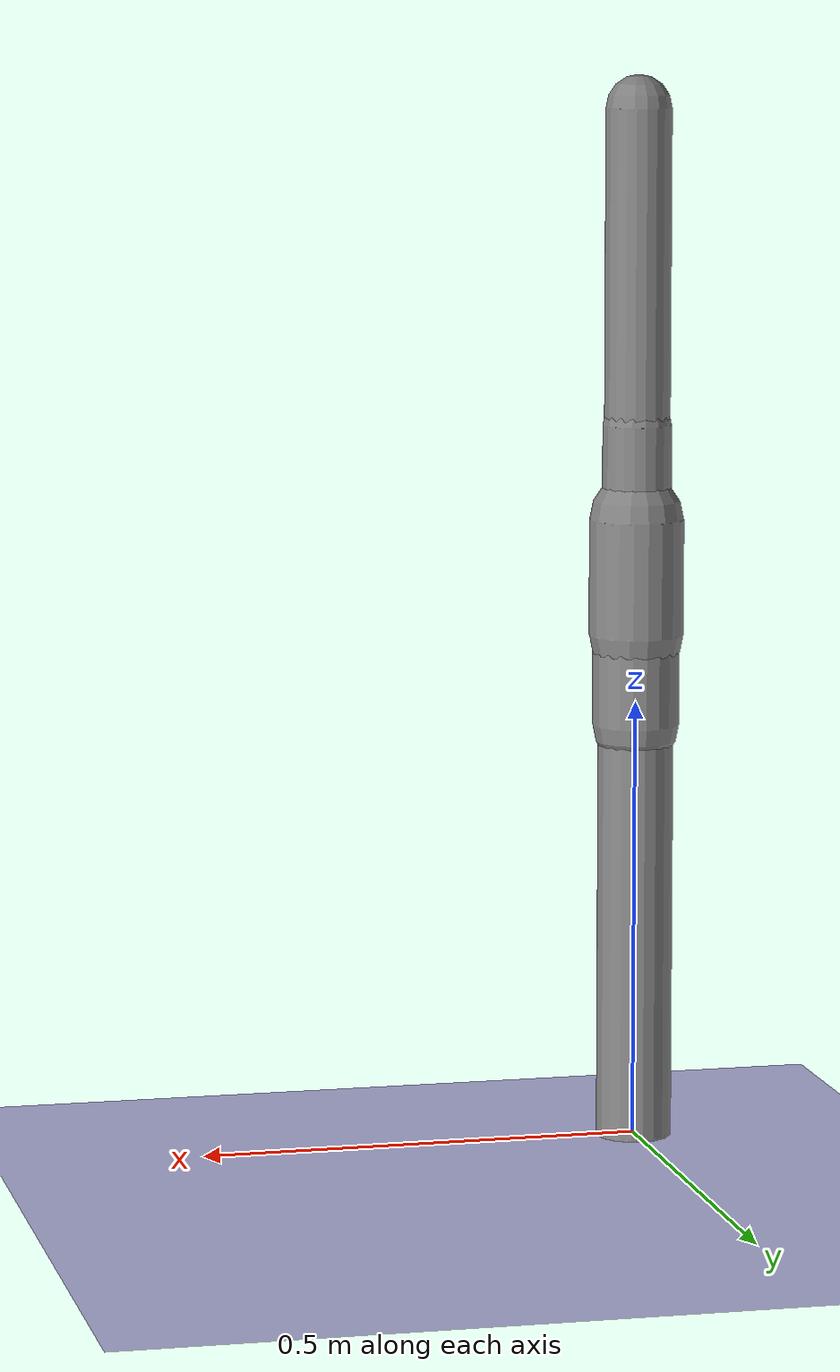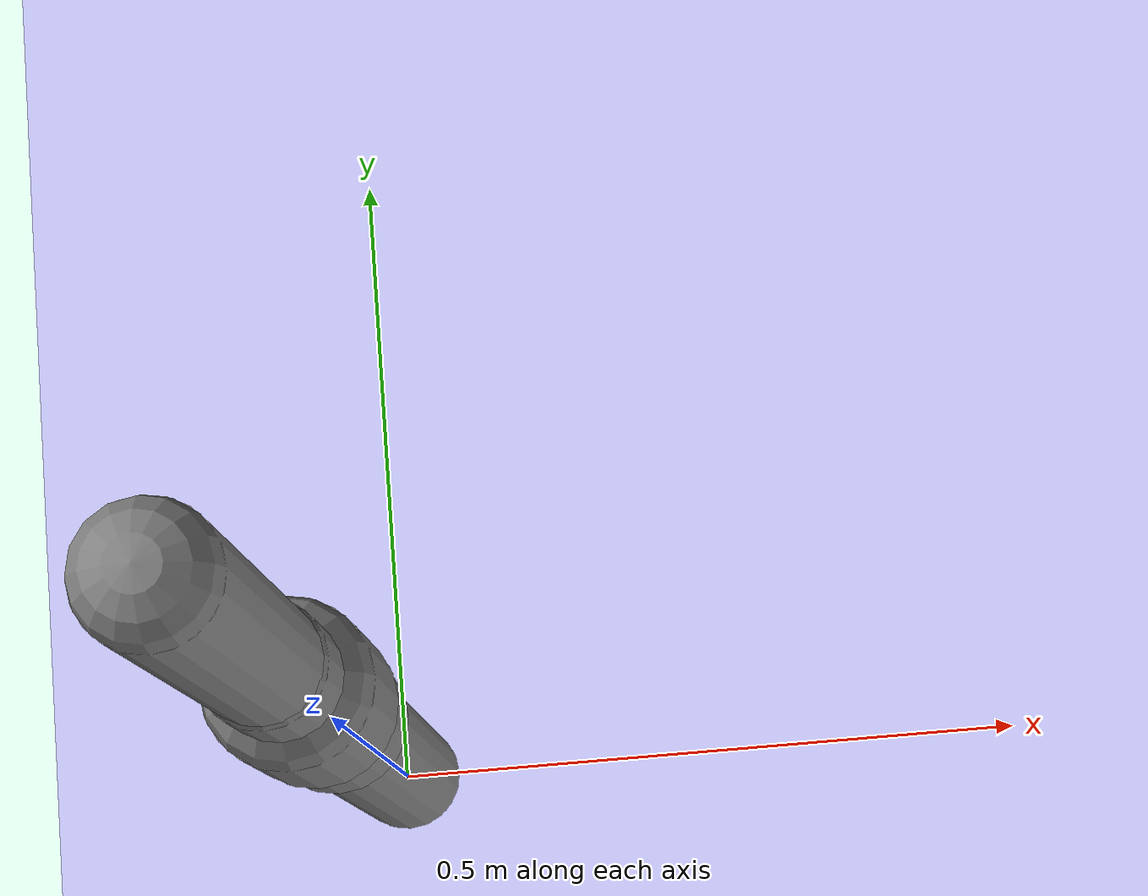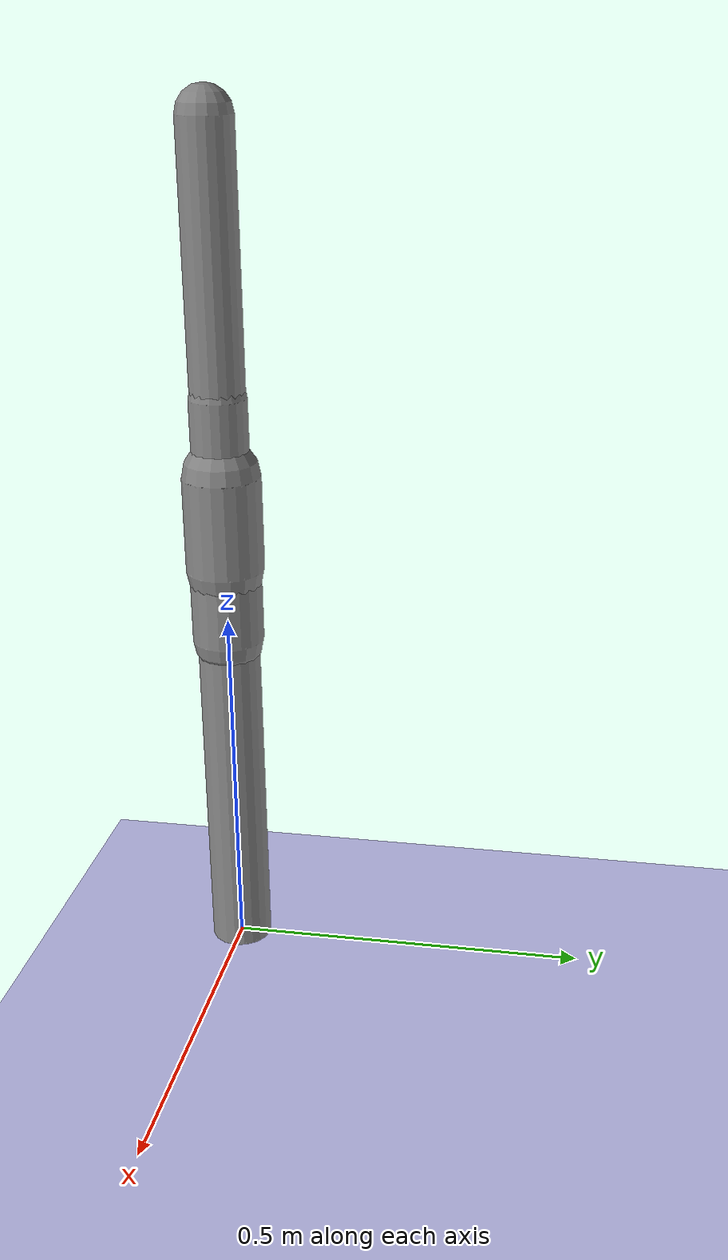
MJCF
<?xml version='1.0' encoding='UTF-8'?>
<mujoco model="robot_model">
  <worldbody>
    <light name="light" pos="0 -3 10" dir="0 0.5 -1" diffuse=".8 .8 .8" specular="0.1 0.1 0.1"/>
    <geom name="floor" type="plane" size="10.0 10.0 0.1" pos="0 0 0" rgba="0.8 0.8 1 1" contype="2" conaffinity="1"/>
    <body name="limb0" pos="0 0 0">
      <geom type="capsule" fromto="0 0 0 0 0 0.5373039636177552" size="0.0426302141580299" density="944.1123055177636" contype="1" conaffinity="2"/>
      <site type="sphere" size="0.01" name="limb0_site0" pos="0 0 0.309974763287745"/>
      <site type="sphere" size="0.01" name="limb0_site1" pos="0 0 0.5059824499294462"/>
      <freejoint name="limb0_root"/>
      <body name="limb1" pos="0 0 0.309974763287745">
        <geom type="capsule" fromto="0 0 0 0 0 0.2639757366326131" size="0.03303782304059255" density="616.6153958948047" contype="1" conaffinity="2"/>
        <site type="sphere" size="0.01" name="limb1_site0" pos="0 0 0.16469519644951955"/>
        <site type="sphere" size="0.01" name="limb1_site1" pos="0 0 0.10105994540977413"/>
        <body name="limb2" pos="0 0 0.16469519644951955">
          <geom type="capsule" fromto="0 0 0 0 0 0.23785756650714102" size="0.049138871714439904" density="645.8772761445443" contype="1" conaffinity="2"/>
          <site type="sphere" size="0.01" name="limb2_site0" pos="0 0 0.10229628708624505"/>
          <body name="limb3" pos="0 0 0.10229628708624505">
            <geom type="capsule" fromto="0 0 0 0 0 0.1320734913801986" size="0.05340957392047939" density="1133.4821049602715" contype="1" conaffinity="2"/>
            <joint name="joint_limb2_limb3_0" type="hinge" axis="0 1 0" range="-69.44632972357735 69.44632972357735" damping="5.0"/>
          </body>
          <joint name="joint_limb1_limb2_0" type="hinge" axis="0 1 0" range="-79.19027832141104 79.19027832141104" damping="5.0"/>
        </body>
        <body name="limb4" pos="0 0 0.10105994540977413">
          <geom type="capsule" fromto="0 0 0 0 0 0.40476216303504414" size="0.0389533326962269" density="911.3399786459739" contype="1" conaffinity="2"/>
          <site type="sphere" size="0.01" name="limb4_site0" pos="0 0 0.40456032929600577"/>
          <body name="limb5" pos="0 0 0.40456032929600577">
            <geom type="capsule" fromto="0 0 0 0 0 0.3549518955056481" size="0.037166377547990764" density="775.7969601490553" contype="1" conaffinity="2"/>
            <joint name="joint_limb4_limb5_0" type="hinge" axis="0 1 0" range="-97.60316524447805 97.60316524447805" damping="5.0"/>
          </body>
          <joint name="joint_limb1_limb4_0" type="hinge" axis="0 1 0" range="-81.36051586401729 81.36051586401729" damping="5.0"/>
        </body>
        <joint name="joint_limb0_limb1_0" type="hinge" axis="0 1 0" range="-106.52351145579496 106.52351145579496" damping="5.0"/>
      </body>
      <body name="limb6" pos="0 0 0.5059824499294462">
        <geom type="capsule" fromto="0 0 0 0 0 0.12459660118477343" size="0.048030699364997174" density="1200.0" contype="1" conaffinity="2"/>
        <joint name="joint_limb0_limb6_0" type="hinge" axis="0 1 0" range="-46.186401585393725 46.186401585393725" damping="5.0"/>
      </body>
    </body>
  </worldbody>
  <actuator>
    <position name="position_actuator_joint_limb0_limb1_0" joint="joint_limb0_limb1_0" gear="1.103807216489191" inheritrange="1" kp="10.0"/>
    <position name="position_actuator_joint_limb1_limb2_0" joint="joint_limb1_limb2_0" gear="1.0104857860709995" inheritrange="1" kp="10.0"/>
    <position name="position_actuator_joint_limb2_limb3_0" joint="joint_limb2_limb3_0" gear="0.9276080822771746" inheritrange="1" kp="10.0"/>
    <position name="position_actuator_joint_limb1_limb4_0" joint="joint_limb1_limb4_0" gear="2.0" inheritrange="1" kp="10.0"/>
    <position name="position_actuator_joint_limb4_limb5_0" joint="joint_limb4_limb5_0" gear="1.7459471619076385" inheritrange="1" kp="10.0"/>
    <position name="position_actuator_joint_limb0_limb6_0" joint="joint_limb0_limb6_0" gear="0.5181521235082891" inheritrange="1" kp="10.0"/>
  </actuator>
</mujoco>
